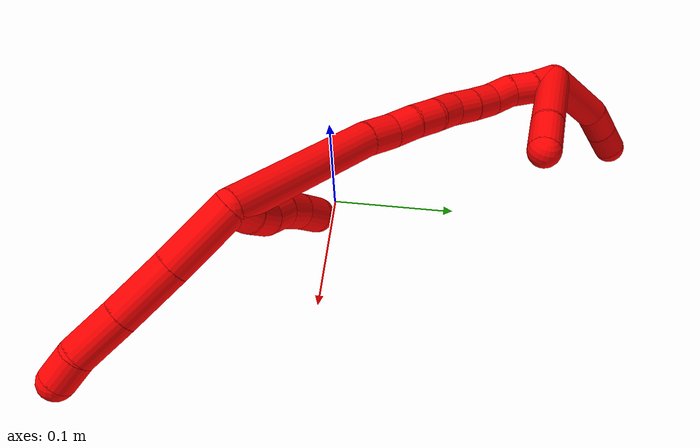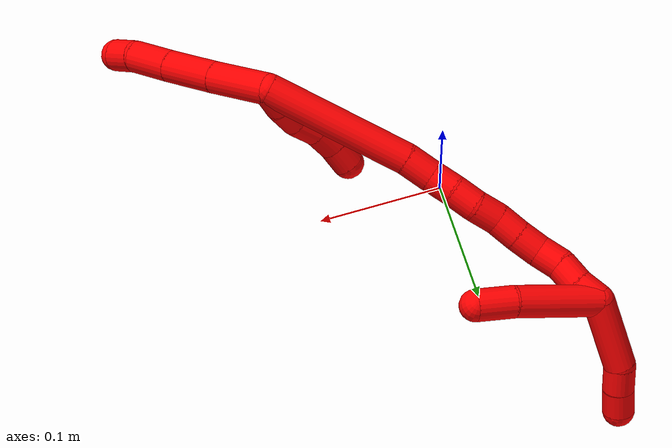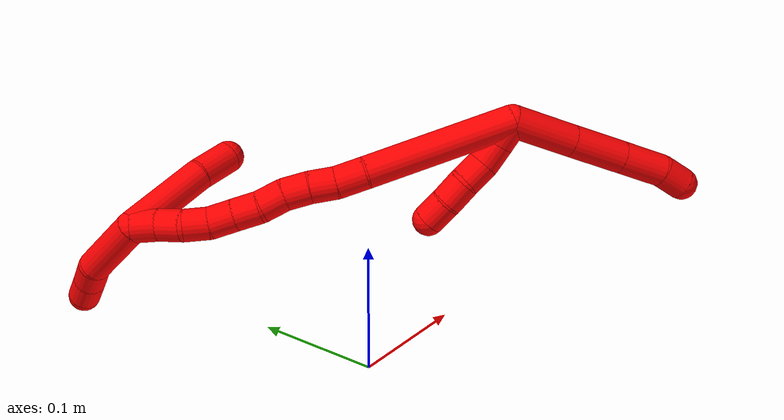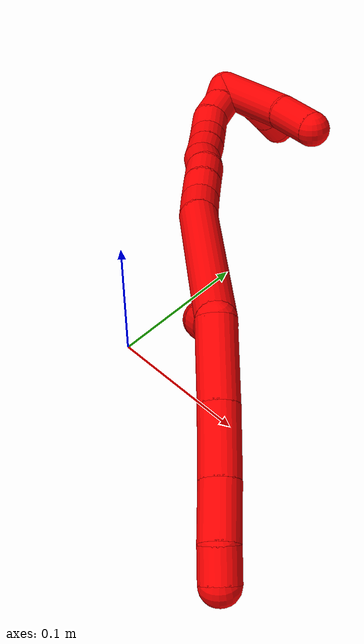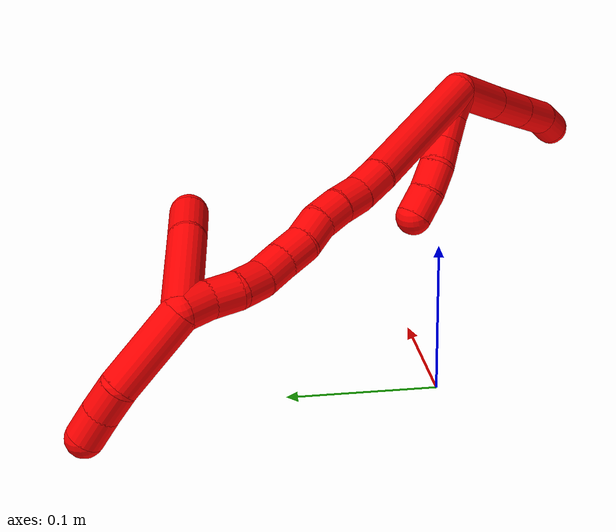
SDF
<sdf version="1.7">
 <world name="default">
  <model name="photoneo_s_sensor">
   <static>1</static>
   <pose>0 0 2 1.57079 1.57079 3.14159</pose>
   <link name="link">
    <inertial><mass>0.1</mass></inertial>
    <sensor name="sensor" type="depth">
     <update_rate>30</update_rate>
     <camera>
      <horizontal_fov>1.22</horizontal_fov>
      <image><width>1920</width><height>1200</height><format>B8G8R8</format></image>
      <clip><near>0.1</near><far>4</far></clip>
      <depth_camera><output>points</output></depth_camera>
     </camera>
     <plugin name="camera_plugin" filename="libgazebo_ros_depth_camera.so">
      <baseline>0.2</baseline>
      <alwaysOn>1</alwaysOn>
      <updateRate>0.0</updateRate>
      <cameraName>camera_ir</cameraName>
      <imageTopicName>/camera/color/image_raw</imageTopicName>
      <cameraInfoTopicName>/camera/color/camera_info</cameraInfoTopicName>
      <depthImageTopicName>/camera/depth/image_raw</depthImageTopicName>
      <depthImageCameraInfoTopicName>/camera/depth/camera_info</depthImageCameraInfoTopicName>
      <pointCloudTopicName>/camera/depth/points</pointCloudTopicName>
      <frameName>fr_optical</frameName>
      <pointCloudCutoff>0.1</pointCloudCutoff>
      <pointCloudCutoffMax>2.0</pointCloudCutoffMax>
      <distortionK1>0</distortionK1>
      <distortionK2>0</distortionK2>
      <distortionK3>0</distortionK3>
      <distortionT1>0</distortionT1>
      <distortionT2>0</distortionT2>
      <CxPrime>0</CxPrime>
      <Cx>0</Cx>
      <Cy>0</Cy>
      <focalLength>0</focalLength>
      <hackBaseline>0</hackBaseline>
     </plugin>
    </sensor>
   </link>
  </model>
  <model name="bin">
   <static>1</static>
   <link name="bottom">
    <collision name="collision-bottom">
     <pose>0 0 -0.01 0 -0 0</pose>
     <geometry><box><size>0.8 0.6 0.02</size></box></geometry>
     <surface>
      <friction><ode><mu>100</mu><mu2>100</mu2></ode></friction>
      <contact><collide_bitmask>65535</collide_bitmask></contact>
     </surface>
    </collision>
   </link>
   <link name="west_wall">
    <collision name="collision-west_wall">
     <pose>-0.41 0 0.1 0 -0 0</pose>
     <geometry><box><size>0.02 0.6 0.2</size></box></geometry>
     <surface>
      <friction><ode><mu>100</mu><mu2>100</mu2></ode></friction>
      <contact><collide_bitmask>65535</collide_bitmask></contact>
     </surface>
    </collision>
   </link>
   <link name="east_wall">
    <collision name="collision-east_wall">
     <pose>0.41 0 0.1 0 -0 0</pose>
     <geometry><box><size>0.02 0.6 0.2</size></box></geometry>
     <surface>
      <friction><ode><mu>100</mu><mu2>100</mu2></ode></friction>
      <contact><collide_bitmask>65535</collide_bitmask></contact>
     </surface>
    </collision>
   </link>
   <link name="south_wall">
    <collision name="collision-south_wall">
     <pose>0 -0.31 0.1 0 -0 0</pose>
     <geometry><box><size>0.8 0.02 0.2</size></box></geometry>
     <surface>
      <friction><ode><mu>100</mu><mu2>100</mu2></ode></friction>
      <contact><collide_bitmask>65535</collide_bitmask></contact>
     </surface>
    </collision>
   </link>
   <link name="north_wall">
    <collision name="collision-north_wall">
     <pose>0 0.31 0.1 0 -0 0</pose>
     <geometry><box><size>0.8 0.02 0.2</size></box></geometry>
     <surface>
      <friction><ode><mu>100</mu><mu2>100</mu2></ode></friction>
      <contact><collide_bitmask>65535</collide_bitmask></contact>
     </surface>
    </collision>
   </link>
  </model>
  <model name="2">
   <static>0</static>
   <link name="2">
    <collision name="collision-cylinder-e_1_2_8">
     <pose>0.012055 -0.015469 -0.016014 2.37349 0.496239 1.11992</pose>
     <geometry><cylinder><radius>0.0125</radius><length>0.050638</length></cylinder></geometry>
     <surface>
      <friction><ode><mu>1.16</mu><mu2>1.16</mu2><slip1>0</slip1><slip2>0</slip2></ode></friction>
      <contact><ode><kp>1e+06</kp><kd>1</kd><max_vel>0</max_vel><min_depth>0.001</min_depth></ode></contact>
     </surface>
    </collision>
    <visual name="visual-cylinder-e_1_2_8">
     <pose>0.012055 -0.015469 -0.016014 2.37349 0.496239 1.11992</pose>
     <geometry><cylinder><radius>0.0125</radius><length>0.050638</length></cylinder></geometry>
     <material><ambient>1 0 0 1</ambient></material>
    </visual>
    <collision name="collision-cylinder-e_2_8_9">
     <pose>0.034131 -0.044457 -0.04539 2.35039 0.485175 1.06985</pose>
     <geometry><cylinder><radius>0.0125</radius><length>0.042976</length></cylinder></geometry>
     <surface>
      <friction><ode><mu>1.16</mu><mu2>1.16</mu2><slip1>0</slip1><slip2>0</slip2></ode></friction>
      <contact><ode><kp>1e+06</kp><kd>1</kd><max_vel>0</max_vel><min_depth>0.001</min_depth></ode></contact>
     </surface>
    </collision>
    <visual name="visual-cylinder-e_2_8_9">
     <pose>0.034131 -0.044457 -0.04539 2.35039 0.485175 1.06985</pose>
     <geometry><cylinder><radius>0.0125</radius><length>0.042976</length></cylinder></geometry>
     <material><ambient>1 0 0 1</ambient></material>
    </visual>
    <collision name="collision-cylinder-e_3_9_10">
     <pose>0.052036 -0.069281 -0.069549 2.33316 0.467073 1.015</pose>
     <geometry><cylinder><radius>0.0125</radius><length>0.035016</length></cylinder></geometry>
     <surface>
      <friction><ode><mu>1.16</mu><mu2>1.16</mu2><slip1>0</slip1><slip2>0</slip2></ode></friction>
      <contact><ode><kp>1e+06</kp><kd>1</kd><max_vel>0</max_vel><min_depth>0.001</min_depth></ode></contact>
     </surface>
    </collision>
    <visual name="visual-cylinder-e_3_9_10">
     <pose>0.052036 -0.069281 -0.069549 2.33316 0.467073 1.015</pose>
     <geometry><cylinder><radius>0.0125</radius><length>0.035016</length></cylinder></geometry>
     <material><ambient>1 0 0 1</ambient></material>
    </visual>
    <collision name="collision-cylinder-e_4_10_6">
     <pose>0.063794 -0.085936 -0.088745 2.57454 0.37105 1.14447</pose>
     <geometry><cylinder><radius>0.0125</radius><length>0.02137</length></cylinder></geometry>
     <surface>
      <friction><ode><mu>1.16</mu><mu2>1.16</mu2><slip1>0</slip1><slip2>0</slip2></ode></friction>
      <contact><ode><kp>1e+06</kp><kd>1</kd><max_vel>0</max_vel><min_depth>0.001</min_depth></ode></contact>
     </surface>
    </collision>
    <visual name="visual-cylinder-e_4_10_6">
     <pose>0.063794 -0.085936 -0.088745 2.57454 0.37105 1.14447</pose>
     <geometry><cylinder><radius>0.0125</radius><length>0.02137</length></cylinder></geometry>
     <material><ambient>1 0 0 1</ambient></material>
    </visual>
    <collision name="collision-cylinder-e_1_2_11">
     <pose>-0.004601 0.005785 -0.006735 -2.4319 -0.478069 1.16353</pose>
     <geometry><cylinder><radius>0.0125</radius><length>0.02</length></cylinder></geometry>
     <surface>
      <friction><ode><mu>1.16</mu><mu2>1.16</mu2><slip1>0</slip1><slip2>0</slip2></ode></friction>
      <contact><ode><kp>1e+06</kp><kd>1</kd><max_vel>0</max_vel><min_depth>0.001</min_depth></ode></contact>
     </surface>
    </collision>
    <visual name="visual-cylinder-e_1_2_11">
     <pose>-0.004601 0.005785 -0.006735 -2.4319 -0.478069 1.16353</pose>
     <geometry><cylinder><radius>0.0125</radius><length>0.02</length></cylinder></geometry>
     <material><ambient>1 0 0 1</ambient></material>
    </visual>
    <collision name="collision-cylinder-e_2_11_12">
     <pose>-0.015155 0.016925 -0.019461 -2.41223 -0.637692 1.42595</pose>
     <geometry><cylinder><radius>0.0125</radius><length>0.02</length></cylinder></geometry>
     <surface>
      <friction><ode><mu>1.16</mu><mu2>1.16</mu2><slip1>0</slip1><slip2>0</slip2></ode></friction>
      <contact><ode><kp>1e+06</kp><kd>1</kd><max_vel>0</max_vel><min_depth>0.001</min_depth></ode></contact>
     </surface>
    </collision>
    <visual name="visual-cylinder-e_2_11_12">
     <pose>-0.015155 0.016925 -0.019461 -2.41223 -0.637692 1.42595</pose>
     <geometry><cylinder><radius>0.0125</radius><length>0.02</length></cylinder></geometry>
     <material><ambient>1 0 0 1</ambient></material>
    </visual>
    <collision name="collision-cylinder-e_3_12_13">
     <pose>-0.028925 0.027484 -0.028889 -2.15437 -0.897295 1.45978</pose>
     <geometry><cylinder><radius>0.0125</radius><length>0.02</length></cylinder></geometry>
     <surface>
      <friction><ode><mu>1.16</mu><mu2>1.16</mu2><slip1>0</slip1><slip2>0</slip2></ode></friction>
      <contact><ode><kp>1e+06</kp><kd>1</kd><max_vel>0</max_vel><min_depth>0.001</min_depth></ode></contact>
     </surface>
    </collision>
    <visual name="visual-cylinder-e_3_12_13">
     <pose>-0.028925 0.027484 -0.028889 -2.15437 -0.897295 1.45978</pose>
     <geometry><cylinder><radius>0.0125</radius><length>0.02</length></cylinder></geometry>
     <material><ambient>1 0 0 1</ambient></material>
    </visual>
    <collision name="collision-cylinder-e_4_13_14">
     <pose>-0.042752 0.038871 -0.03739 -2.25712 -0.644911 1.22897</pose>
     <geometry><cylinder><radius>0.0125</radius><length>0.02</length></cylinder></geometry>
     <surface>
      <friction><ode><mu>1.16</mu><mu2>1.16</mu2><slip1>0</slip1><slip2>0</slip2></ode></friction>
      <contact><ode><kp>1e+06</kp><kd>1</kd><max_vel>0</max_vel><min_depth>0.001</min_depth></ode></contact>
     </surface>
    </collision>
    <visual name="visual-cylinder-e_4_13_14">
     <pose>-0.042752 0.038871 -0.03739 -2.25712 -0.644911 1.22897</pose>
     <geometry><cylinder><radius>0.0125</radius><length>0.02</length></cylinder></geometry>
     <material><ambient>1 0 0 1</ambient></material>
    </visual>
    <collision name="collision-cylinder-e_5_14_5">
     <pose>-0.053499 0.052129 -0.047699 -2.20873 -0.493332 0.927459</pose>
     <geometry><cylinder><radius>0.0125</radius><length>0.02</length></cylinder></geometry>
     <surface>
      <friction><ode><mu>1.16</mu><mu2>1.16</mu2><slip1>0</slip1><slip2>0</slip2></ode></friction>
      <contact><ode><kp>1e+06</kp><kd>1</kd><max_vel>0</max_vel><min_depth>0.001</min_depth></ode></contact>
     </surface>
    </collision>
    <visual name="visual-cylinder-e_5_14_5">
     <pose>-0.053499 0.052129 -0.047699 -2.20873 -0.493332 0.927459</pose>
     <geometry><cylinder><radius>0.0125</radius><length>0.02</length></cylinder></geometry>
     <material><ambient>1 0 0 1</ambient></material>
    </visual>
    <collision name="collision-cylinder-e_1_2_15">
     <pose>-0.040097 0.042379 0.001512 -1.53513 -0.757425 0.733236</pose>
     <geometry><cylinder><radius>0.0125</radius><length>0.116723</length></cylinder></geometry>
     <surface>
      <friction><ode><mu>1.16</mu><mu2>1.16</mu2><slip1>0</slip1><slip2>0</slip2></ode></friction>
      <contact><ode><kp>1e+06</kp><kd>1</kd><max_vel>0</max_vel><min_depth>0.001</min_depth></ode></contact>
     </surface>
    </collision>
    <visual name="visual-cylinder-e_1_2_15">
     <pose>-0.040097 0.042379 0.001512 -1.53513 -0.757425 0.733236</pose>
     <geometry><cylinder><radius>0.0125</radius><length>0.116723</length></cylinder></geometry>
     <material><ambient>1 0 0 1</ambient></material>
    </visual>
    <collision name="collision-cylinder-e_2_15_16">
     <pose>-0.087037 0.094056 0.002657 -1.61027 -0.633996 0.657761</pose>
     <geometry><cylinder><radius>0.0125</radius><length>0.023101</length></cylinder></geometry>
     <surface>
      <friction><ode><mu>1.16</mu><mu2>1.16</mu2><slip1>0</slip1><slip2>0</slip2></ode></friction>
      <contact><ode><kp>1e+06</kp><kd>1</kd><max_vel>0</max_vel><min_depth>0.001</min_depth></ode></contact>
     </surface>
    </collision>
    <visual name="visual-cylinder-e_2_15_16">
     <pose>-0.087037 0.094056 0.002657 -1.61027 -0.633996 0.657761</pose>
     <geometry><cylinder><radius>0.0125</radius><length>0.023101</length></cylinder></geometry>
     <material><ambient>1 0 0 1</ambient></material>
    </visual>
    <collision name="collision-cylinder-e_3_16_17">
     <pose>-0.09941 0.111632 0.003548 -1.41985 -0.58384 0.505465</pose>
     <geometry><cylinder><radius>0.0125</radius><length>0.020069</length></cylinder></geometry>
     <surface>
      <friction><ode><mu>1.16</mu><mu2>1.16</mu2><slip1>0</slip1><slip2>0</slip2></ode></friction>
      <contact><ode><kp>1e+06</kp><kd>1</kd><max_vel>0</max_vel><min_depth>0.001</min_depth></ode></contact>
     </surface>
    </collision>
    <visual name="visual-cylinder-e_3_16_17">
     <pose>-0.09941 0.111632 0.003548 -1.41985 -0.58384 0.505465</pose>
     <geometry><cylinder><radius>0.0125</radius><length>0.020069</length></cylinder></geometry>
     <material><ambient>1 0 0 1</ambient></material>
    </visual>
    <collision name="collision-cylinder-e_4_17_18">
     <pose>-0.110557 0.128218 0.004963 -1.55201 -0.594246 0.583806</pose>
     <geometry><cylinder><radius>0.0125</radius><length>0.020058</length></cylinder></geometry>
     <surface>
      <friction><ode><mu>1.16</mu><mu2>1.16</mu2><slip1>0</slip1><slip2>0</slip2></ode></friction>
      <contact><ode><kp>1e+06</kp><kd>1</kd><max_vel>0</max_vel><min_depth>0.001</min_depth></ode></contact>
     </surface>
    </collision>
    <visual name="visual-cylinder-e_4_17_18">
     <pose>-0.110557 0.128218 0.004963 -1.55201 -0.594246 0.583806</pose>
     <geometry><cylinder><radius>0.0125</radius><length>0.020058</length></cylinder></geometry>
     <material><ambient>1 0 0 1</ambient></material>
    </visual>
    <collision name="collision-cylinder-e_5_18_19">
     <pose>-0.123062 0.143692 0.003838 -1.74777 -0.757933 0.888122</pose>
     <geometry><cylinder><radius>0.0125</radius><length>0.020046</length></cylinder></geometry>
     <surface>
      <friction><ode><mu>1.16</mu><mu2>1.16</mu2><slip1>0</slip1><slip2>0</slip2></ode></friction>
      <contact><ode><kp>1e+06</kp><kd>1</kd><max_vel>0</max_vel><min_depth>0.001</min_depth></ode></contact>
     </surface>
    </collision>
    <visual name="visual-cylinder-e_5_18_19">
     <pose>-0.123062 0.143692 0.003838 -1.74777 -0.757933 0.888122</pose>
     <geometry><cylinder><radius>0.0125</radius><length>0.020046</length></cylinder></geometry>
     <material><ambient>1 0 0 1</ambient></material>
    </visual>
    <collision name="collision-cylinder-e_6_19_20">
     <pose>-0.135166 0.159382 0.002141 -1.61944 -0.548386 0.574286</pose>
     <geometry><cylinder><radius>0.0125</radius><length>0.020002</length></cylinder></geometry>
     <surface>
      <friction><ode><mu>1.16</mu><mu2>1.16</mu2><slip1>0</slip1><slip2>0</slip2></ode></friction>
      <contact><ode><kp>1e+06</kp><kd>1</kd><max_vel>0</max_vel><min_depth>0.001</min_depth></ode></contact>
     </surface>
    </collision>
    <visual name="visual-cylinder-e_6_19_20">
     <pose>-0.135166 0.159382 0.002141 -1.61944 -0.548386 0.574286</pose>
     <geometry><cylinder><radius>0.0125</radius><length>0.020002</length></cylinder></geometry>
     <material><ambient>1 0 0 1</ambient></material>
    </visual>
    <collision name="collision-cylinder-e_7_20_21">
     <pose>-0.146038 0.176146 0.001433 -1.60638 -0.601465 0.621901</pose>
     <geometry><cylinder><radius>0.0125</radius><length>0.020001</length></cylinder></geometry>
     <surface>
      <friction><ode><mu>1.16</mu><mu2>1.16</mu2><slip1>0</slip1><slip2>0</slip2></ode></friction>
      <contact><ode><kp>1e+06</kp><kd>1</kd><max_vel>0</max_vel><min_depth>0.001</min_depth></ode></contact>
     </surface>
    </collision>
    <visual name="visual-cylinder-e_7_20_21">
     <pose>-0.146038 0.176146 0.001433 -1.60638 -0.601465 0.621901</pose>
     <geometry><cylinder><radius>0.0125</radius><length>0.020001</length></cylinder></geometry>
     <material><ambient>1 0 0 1</ambient></material>
    </visual>
    <collision name="collision-cylinder-e_8_21_22">
     <pose>-0.156909 0.192678 0.003162 -1.33157 -0.548265 0.434756</pose>
     <geometry><cylinder><radius>0.0125</radius><length>0.02</length></cylinder></geometry>
     <surface>
      <friction><ode><mu>1.16</mu><mu2>1.16</mu2><slip1>0</slip1><slip2>0</slip2></ode></friction>
      <contact><ode><kp>1e+06</kp><kd>1</kd><max_vel>0</max_vel><min_depth>0.001</min_depth></ode></contact>
     </surface>
    </collision>
    <visual name="visual-cylinder-e_8_21_22">
     <pose>-0.156909 0.192678 0.003162 -1.33157 -0.548265 0.434756</pose>
     <geometry><cylinder><radius>0.0125</radius><length>0.02</length></cylinder></geometry>
     <material><ambient>1 0 0 1</ambient></material>
    </visual>
    <collision name="collision-cylinder-e_9_22_23">
     <pose>-0.164642 0.210518 0.006751 -1.40817 -0.254853 0.216772</pose>
     <geometry><cylinder><radius>0.0125</radius><length>0.02</length></cylinder></geometry>
     <surface>
      <friction><ode><mu>1.16</mu><mu2>1.16</mu2><slip1>0</slip1><slip2>0</slip2></ode></friction>
      <contact><ode><kp>1e+06</kp><kd>1</kd><max_vel>0</max_vel><min_depth>0.001</min_depth></ode></contact>
     </surface>
    </collision>
    <visual name="visual-cylinder-e_9_22_23">
     <pose>-0.164642 0.210518 0.006751 -1.40817 -0.254853 0.216772</pose>
     <geometry><cylinder><radius>0.0125</radius><length>0.02</length></cylinder></geometry>
     <material><ambient>1 0 0 1</ambient></material>
    </visual>
    <collision name="collision-cylinder-e_10_23_1">
     <pose>-0.171586 0.228868 0.010046 -1.37692 -0.458169 0.379089</pose>
     <geometry><cylinder><radius>0.0125</radius><length>0.02</length></cylinder></geometry>
     <surface>
      <friction><ode><mu>1.16</mu><mu2>1.16</mu2><slip1>0</slip1><slip2>0</slip2></ode></friction>
      <contact><ode><kp>1e+06</kp><kd>1</kd><max_vel>0</max_vel><min_depth>0.001</min_depth></ode></contact>
     </surface>
    </collision>
    <visual name="visual-cylinder-e_10_23_1">
     <pose>-0.171586 0.228868 0.010046 -1.37692 -0.458169 0.379089</pose>
     <geometry><cylinder><radius>0.0125</radius><length>0.02</length></cylinder></geometry>
     <material><ambient>1 0 0 1</ambient></material>
    </visual>
    <collision name="collision-cylinder-e_1_1_24">
     <pose>-0.14277 0.228023 0.013886 1.35518 1.28204 1.08143</pose>
     <geometry><cylinder><radius>0.0125</radius><length>0.06935</length></cylinder></geometry>
     <surface>
      <friction><ode><mu>1.16</mu><mu2>1.16</mu2><slip1>0</slip1><slip2>0</slip2></ode></friction>
      <contact><ode><kp>1e+06</kp><kd>1</kd><max_vel>0</max_vel><min_depth>0.001</min_depth></ode></contact>
     </surface>
    </collision>
    <visual name="visual-cylinder-e_1_1_24">
     <pose>-0.14277 0.228023 0.013886 1.35518 1.28204 1.08143</pose>
     <geometry><cylinder><radius>0.0125</radius><length>0.06935</length></cylinder></geometry>
     <material><ambient>1 0 0 1</ambient></material>
    </visual>
    <collision name="collision-cylinder-e_2_24_4">
     <pose>-0.094689 0.214745 0.014818 1.88502 1.31885 1.63563</pose>
     <geometry><cylinder><radius>0.0125</radius><length>0.03065</length></cylinder></geometry>
     <surface>
      <friction><ode><mu>1.16</mu><mu2>1.16</mu2><slip1>0</slip1><slip2>0</slip2></ode></friction>
      <contact><ode><kp>1e+06</kp><kd>1</kd><max_vel>0</max_vel><min_depth>0.001</min_depth></ode></contact>
     </surface>
    </collision>
    <visual name="visual-cylinder-e_2_24_4">
     <pose>-0.094689 0.214745 0.014818 1.88502 1.31885 1.63563</pose>
     <geometry><cylinder><radius>0.0125</radius><length>0.03065</length></cylinder></geometry>
     <material><ambient>1 0 0 1</ambient></material>
    </visual>
    <collision name="collision-cylinder-e_1_1_25">
     <pose>-0.181121 0.261054 -0.004621 -2.18224 -0.177117 0.338113</pose>
     <geometry><cylinder><radius>0.0125</radius><length>0.058027</length></cylinder></geometry>
     <surface>
      <friction><ode><mu>1.16</mu><mu2>1.16</mu2><slip1>0</slip1><slip2>0</slip2></ode></friction>
      <contact><ode><kp>1e+06</kp><kd>1</kd><max_vel>0</max_vel><min_depth>0.001</min_depth></ode></contact>
     </surface>
    </collision>
    <visual name="visual-cylinder-e_1_1_25">
     <pose>-0.181121 0.261054 -0.004621 -2.18224 -0.177117 0.338113</pose>
     <geometry><cylinder><radius>0.0125</radius><length>0.058027</length></cylinder></geometry>
     <material><ambient>1 0 0 1</ambient></material>
    </visual>
    <collision name="collision-cylinder-e_2_25_26">
     <pose>-0.185546 0.291478 -0.028928 -2.41458 0.064814 -0.170027</pose>
     <geometry><cylinder><radius>0.0125</radius><length>0.021223</length></cylinder></geometry>
     <surface>
      <friction><ode><mu>1.16</mu><mu2>1.16</mu2><slip1>0</slip1><slip2>0</slip2></ode></friction>
      <contact><ode><kp>1e+06</kp><kd>1</kd><max_vel>0</max_vel><min_depth>0.001</min_depth></ode></contact>
     </surface>
    </collision>
    <visual name="visual-cylinder-e_2_25_26">
     <pose>-0.185546 0.291478 -0.028928 -2.41458 0.064814 -0.170027</pose>
     <geometry><cylinder><radius>0.0125</radius><length>0.021223</length></cylinder></geometry>
     <material><ambient>1 0 0 1</ambient></material>
    </visual>
    <collision name="collision-cylinder-e_3_26_3">
     <pose>-0.184848 0.305379 -0.04462 -2.41875 0.000984 -0.002603</pose>
     <geometry><cylinder><radius>0.0125</radius><length>0.02075</length></cylinder></geometry>
     <surface>
      <friction><ode><mu>1.16</mu><mu2>1.16</mu2><slip1>0</slip1><slip2>0</slip2></ode></friction>
      <contact><ode><kp>1e+06</kp><kd>1</kd><max_vel>0</max_vel><min_depth>0.001</min_depth></ode></contact>
     </surface>
    </collision>
    <visual name="visual-cylinder-e_3_26_3">
     <pose>-0.184848 0.305379 -0.04462 -2.41875 0.000984 -0.002603</pose>
     <geometry><cylinder><radius>0.0125</radius><length>0.02075</length></cylinder></geometry>
     <material><ambient>1 0 0 1</ambient></material>
    </visual>
    <collision name="collision-sphere-3">
     <pose>-0.184838 0.312242 -0.0524 0 -0 0</pose>
     <geometry><sphere><radius>0.0125</radius></sphere></geometry>
     <surface>
      <friction><ode><mu>1.16</mu><mu2>1.16</mu2><slip1>0</slip1><slip2>0</slip2></ode></friction>
      <contact><ode><kp>1e+06</kp><kd>1</kd><max_vel>0</max_vel><min_depth>0.001</min_depth></ode></contact>
     </surface>
    </collision>
    <visual name="visual-sphere-3">
     <pose>-0.184838 0.312242 -0.0524 0 -0 0</pose>
     <geometry><sphere><radius>0.0125</radius></sphere></geometry>
     <material><ambient>1 0 0 1</ambient></material>
    </visual>
    <collision name="collision-sphere-26">
     <pose>-0.184859 0.298516 -0.036839 0 -0 0</pose>
     <geometry><sphere><radius>0.0125</radius></sphere></geometry>
     <surface>
      <friction><ode><mu>1.16</mu><mu2>1.16</mu2><slip1>0</slip1><slip2>0</slip2></ode></friction>
      <contact><ode><kp>1e+06</kp><kd>1</kd><max_vel>0</max_vel><min_depth>0.001</min_depth></ode></contact>
     </surface>
    </collision>
    <visual name="visual-sphere-26">
     <pose>-0.184859 0.298516 -0.036839 0 -0 0</pose>
     <geometry><sphere><radius>0.0125</radius></sphere></geometry>
     <material><ambient>1 0 0 1</ambient></material>
    </visual>
    <collision name="collision-sphere-25">
     <pose>-0.186233 0.28444 -0.021016 0 -0 0</pose>
     <geometry><sphere><radius>0.0125</radius></sphere></geometry>
     <surface>
      <friction><ode><mu>1.16</mu><mu2>1.16</mu2><slip1>0</slip1><slip2>0</slip2></ode></friction>
      <contact><ode><kp>1e+06</kp><kd>1</kd><max_vel>0</max_vel><min_depth>0.001</min_depth></ode></contact>
     </surface>
    </collision>
    <visual name="visual-sphere-25">
     <pose>-0.186233 0.28444 -0.021016 0 -0 0</pose>
     <geometry><sphere><radius>0.0125</radius></sphere></geometry>
     <material><ambient>1 0 0 1</ambient></material>
    </visual>
    <collision name="collision-sphere-4">
     <pose>-0.079848 0.211112 0.013637 0 -0 0</pose>
     <geometry><sphere><radius>0.0125</radius></sphere></geometry>
     <surface>
      <friction><ode><mu>1.16</mu><mu2>1.16</mu2><slip1>0</slip1><slip2>0</slip2></ode></friction>
      <contact><ode><kp>1e+06</kp><kd>1</kd><max_vel>0</max_vel><min_depth>0.001</min_depth></ode></contact>
     </surface>
    </collision>
    <visual name="visual-sphere-4">
     <pose>-0.079848 0.211112 0.013637 0 -0 0</pose>
     <geometry><sphere><radius>0.0125</radius></sphere></geometry>
     <material><ambient>1 0 0 1</ambient></material>
    </visual>
    <collision name="collision-sphere-24">
     <pose>-0.10953 0.218378 0.015999 0 -0 0</pose>
     <geometry><sphere><radius>0.0125</radius></sphere></geometry>
     <surface>
      <friction><ode><mu>1.16</mu><mu2>1.16</mu2><slip1>0</slip1><slip2>0</slip2></ode></friction>
      <contact><ode><kp>1e+06</kp><kd>1</kd><max_vel>0</max_vel><min_depth>0.001</min_depth></ode></contact>
     </surface>
    </collision>
    <visual name="visual-sphere-24">
     <pose>-0.10953 0.218378 0.015999 0 -0 0</pose>
     <geometry><sphere><radius>0.0125</radius></sphere></geometry>
     <material><ambient>1 0 0 1</ambient></material>
    </visual>
    <collision name="collision-sphere-1">
     <pose>-0.176009 0.237669 0.011774 0 -0 0</pose>
     <geometry><sphere><radius>0.0125</radius></sphere></geometry>
     <surface>
      <friction><ode><mu>1.16</mu><mu2>1.16</mu2><slip1>0</slip1><slip2>0</slip2></ode></friction>
      <contact><ode><kp>1e+06</kp><kd>1</kd><max_vel>0</max_vel><min_depth>0.001</min_depth></ode></contact>
     </surface>
    </collision>
    <visual name="visual-sphere-1">
     <pose>-0.176009 0.237669 0.011774 0 -0 0</pose>
     <geometry><sphere><radius>0.0125</radius></sphere></geometry>
     <material><ambient>1 0 0 1</ambient></material>
    </visual>
    <collision name="collision-sphere-23">
     <pose>-0.167163 0.220068 0.008318 0 -0 0</pose>
     <geometry><sphere><radius>0.0125</radius></sphere></geometry>
     <surface>
      <friction><ode><mu>1.16</mu><mu2>1.16</mu2><slip1>0</slip1><slip2>0</slip2></ode></friction>
      <contact><ode><kp>1e+06</kp><kd>1</kd><max_vel>0</max_vel><min_depth>0.001</min_depth></ode></contact>
     </surface>
    </collision>
    <visual name="visual-sphere-23">
     <pose>-0.167163 0.220068 0.008318 0 -0 0</pose>
     <geometry><sphere><radius>0.0125</radius></sphere></geometry>
     <material><ambient>1 0 0 1</ambient></material>
    </visual>
    <collision name="collision-sphere-22">
     <pose>-0.162121 0.200969 0.005184 0 -0 0</pose>
     <geometry><sphere><radius>0.0125</radius></sphere></geometry>
     <surface>
      <friction><ode><mu>1.16</mu><mu2>1.16</mu2><slip1>0</slip1><slip2>0</slip2></ode></friction>
      <contact><ode><kp>1e+06</kp><kd>1</kd><max_vel>0</max_vel><min_depth>0.001</min_depth></ode></contact>
     </surface>
    </collision>
    <visual name="visual-sphere-22">
     <pose>-0.162121 0.200969 0.005184 0 -0 0</pose>
     <geometry><sphere><radius>0.0125</radius></sphere></geometry>
     <material><ambient>1 0 0 1</ambient></material>
    </visual>
    <collision name="collision-sphere-21">
     <pose>-0.151697 0.184386 0.00114 0 -0 0</pose>
     <geometry><sphere><radius>0.0125</radius></sphere></geometry>
     <surface>
      <friction><ode><mu>1.16</mu><mu2>1.16</mu2><slip1>0</slip1><slip2>0</slip2></ode></friction>
      <contact><ode><kp>1e+06</kp><kd>1</kd><max_vel>0</max_vel><min_depth>0.001</min_depth></ode></contact>
     </surface>
    </collision>
    <visual name="visual-sphere-21">
     <pose>-0.151697 0.184386 0.00114 0 -0 0</pose>
     <geometry><sphere><radius>0.0125</radius></sphere></geometry>
     <material><ambient>1 0 0 1</ambient></material>
    </visual>
    <collision name="collision-sphere-11">
     <pose>-0.009201 0.011571 -0.01347 0 -0 0</pose>
     <geometry><sphere><radius>0.0125</radius></sphere></geometry>
     <surface>
      <friction><ode><mu>1.16</mu><mu2>1.16</mu2><slip1>0</slip1><slip2>0</slip2></ode></friction>
      <contact><ode><kp>1e+06</kp><kd>1</kd><max_vel>0</max_vel><min_depth>0.001</min_depth></ode></contact>
     </surface>
    </collision>
    <visual name="visual-sphere-11">
     <pose>-0.009201 0.011571 -0.01347 0 -0 0</pose>
     <geometry><sphere><radius>0.0125</radius></sphere></geometry>
     <material><ambient>1 0 0 1</ambient></material>
    </visual>
    <collision name="collision-sphere-6">
     <pose>0.067668 -0.091285 -0.097144 0 -0 0</pose>
     <geometry><sphere><radius>0.0125</radius></sphere></geometry>
     <surface>
      <friction><ode><mu>1.16</mu><mu2>1.16</mu2><slip1>0</slip1><slip2>0</slip2></ode></friction>
      <contact><ode><kp>1e+06</kp><kd>1</kd><max_vel>0</max_vel><min_depth>0.001</min_depth></ode></contact>
     </surface>
    </collision>
    <visual name="visual-sphere-6">
     <pose>0.067668 -0.091285 -0.097144 0 -0 0</pose>
     <geometry><sphere><radius>0.0125</radius></sphere></geometry>
     <material><ambient>1 0 0 1</ambient></material>
    </visual>
    <collision name="collision-sphere-10">
     <pose>0.059919 -0.080587 -0.080345 0 -0 0</pose>
     <geometry><sphere><radius>0.0125</radius></sphere></geometry>
     <surface>
      <friction><ode><mu>1.16</mu><mu2>1.16</mu2><slip1>0</slip1><slip2>0</slip2></ode></friction>
      <contact><ode><kp>1e+06</kp><kd>1</kd><max_vel>0</max_vel><min_depth>0.001</min_depth></ode></contact>
     </surface>
    </collision>
    <visual name="visual-sphere-10">
     <pose>0.059919 -0.080587 -0.080345 0 -0 0</pose>
     <geometry><sphere><radius>0.0125</radius></sphere></geometry>
     <material><ambient>1 0 0 1</ambient></material>
    </visual>
    <collision name="collision-sphere-9">
     <pose>0.044152 -0.057976 -0.058752 0 -0 0</pose>
     <geometry><sphere><radius>0.0125</radius></sphere></geometry>
     <surface>
      <friction><ode><mu>1.16</mu><mu2>1.16</mu2><slip1>0</slip1><slip2>0</slip2></ode></friction>
      <contact><ode><kp>1e+06</kp><kd>1</kd><max_vel>0</max_vel><min_depth>0.001</min_depth></ode></contact>
     </surface>
    </collision>
    <visual name="visual-sphere-9">
     <pose>0.044152 -0.057976 -0.058752 0 -0 0</pose>
     <geometry><sphere><radius>0.0125</radius></sphere></geometry>
     <material><ambient>1 0 0 1</ambient></material>
    </visual>
    <collision name="collision-sphere-2">
     <geometry><sphere><radius>0.0125</radius></sphere></geometry>
     <surface>
      <friction><ode><mu>1.16</mu><mu2>1.16</mu2><slip1>0</slip1><slip2>0</slip2></ode></friction>
      <contact><ode><kp>1e+06</kp><kd>1</kd><max_vel>0</max_vel><min_depth>0.001</min_depth></ode></contact>
     </surface>
    </collision>
    <visual name="visual-sphere-2">
     <geometry><sphere><radius>0.0125</radius></sphere></geometry>
     <material><ambient>1 0 0 1</ambient></material>
    </visual>
    <collision name="collision-sphere-19">
     <pose>-0.129952 0.150857 0.002556 0 -0 0</pose>
     <geometry><sphere><radius>0.0125</radius></sphere></geometry>
     <surface>
      <friction><ode><mu>1.16</mu><mu2>1.16</mu2><slip1>0</slip1><slip2>0</slip2></ode></friction>
      <contact><ode><kp>1e+06</kp><kd>1</kd><max_vel>0</max_vel><min_depth>0.001</min_depth></ode></contact>
     </surface>
    </collision>
    <visual name="visual-sphere-19">
     <pose>-0.129952 0.150857 0.002556 0 -0 0</pose>
     <geometry><sphere><radius>0.0125</radius></sphere></geometry>
     <material><ambient>1 0 0 1</ambient></material>
    </visual>
    <collision name="collision-sphere-8">
     <pose>0.02411 -0.030938 -0.032027 0 -0 0</pose>
     <geometry><sphere><radius>0.0125</radius></sphere></geometry>
     <surface>
      <friction><ode><mu>1.16</mu><mu2>1.16</mu2><slip1>0</slip1><slip2>0</slip2></ode></friction>
      <contact><ode><kp>1e+06</kp><kd>1</kd><max_vel>0</max_vel><min_depth>0.001</min_depth></ode></contact>
     </surface>
    </collision>
    <visual name="visual-sphere-8">
     <pose>0.02411 -0.030938 -0.032027 0 -0 0</pose>
     <geometry><sphere><radius>0.0125</radius></sphere></geometry>
     <material><ambient>1 0 0 1</ambient></material>
    </visual>
    <collision name="collision-sphere-12">
     <pose>-0.021108 0.022279 -0.025452 0 -0 0</pose>
     <geometry><sphere><radius>0.0125</radius></sphere></geometry>
     <surface>
      <friction><ode><mu>1.16</mu><mu2>1.16</mu2><slip1>0</slip1><slip2>0</slip2></ode></friction>
      <contact><ode><kp>1e+06</kp><kd>1</kd><max_vel>0</max_vel><min_depth>0.001</min_depth></ode></contact>
     </surface>
    </collision>
    <visual name="visual-sphere-12">
     <pose>-0.021108 0.022279 -0.025452 0 -0 0</pose>
     <geometry><sphere><radius>0.0125</radius></sphere></geometry>
     <material><ambient>1 0 0 1</ambient></material>
    </visual>
    <collision name="collision-sphere-13">
     <pose>-0.036741 0.032689 -0.032325 0 -0 0</pose>
     <geometry><sphere><radius>0.0125</radius></sphere></geometry>
     <surface>
      <friction><ode><mu>1.16</mu><mu2>1.16</mu2><slip1>0</slip1><slip2>0</slip2></ode></friction>
      <contact><ode><kp>1e+06</kp><kd>1</kd><max_vel>0</max_vel><min_depth>0.001</min_depth></ode></contact>
     </surface>
    </collision>
    <visual name="visual-sphere-13">
     <pose>-0.036741 0.032689 -0.032325 0 -0 0</pose>
     <geometry><sphere><radius>0.0125</radius></sphere></geometry>
     <material><ambient>1 0 0 1</ambient></material>
    </visual>
    <collision name="collision-sphere-14">
     <pose>-0.048764 0.045054 -0.042454 0 -0 0</pose>
     <geometry><sphere><radius>0.0125</radius></sphere></geometry>
     <surface>
      <friction><ode><mu>1.16</mu><mu2>1.16</mu2><slip1>0</slip1><slip2>0</slip2></ode></friction>
      <contact><ode><kp>1e+06</kp><kd>1</kd><max_vel>0</max_vel><min_depth>0.001</min_depth></ode></contact>
     </surface>
    </collision>
    <visual name="visual-sphere-14">
     <pose>-0.048764 0.045054 -0.042454 0 -0 0</pose>
     <geometry><sphere><radius>0.0125</radius></sphere></geometry>
     <material><ambient>1 0 0 1</ambient></material>
    </visual>
    <collision name="collision-sphere-5">
     <pose>-0.058235 0.059204 -0.052944 0 -0 0</pose>
     <geometry><sphere><radius>0.0125</radius></sphere></geometry>
     <surface>
      <friction><ode><mu>1.16</mu><mu2>1.16</mu2><slip1>0</slip1><slip2>0</slip2></ode></friction>
      <contact><ode><kp>1e+06</kp><kd>1</kd><max_vel>0</max_vel><min_depth>0.001</min_depth></ode></contact>
     </surface>
    </collision>
    <visual name="visual-sphere-5">
     <pose>-0.058235 0.059204 -0.052944 0 -0 0</pose>
     <geometry><sphere><radius>0.0125</radius></sphere></geometry>
     <material><ambient>1 0 0 1</ambient></material>
    </visual>
    <collision name="collision-sphere-15">
     <pose>-0.080195 0.084758 0.003024 0 -0 0</pose>
     <geometry><sphere><radius>0.0125</radius></sphere></geometry>
     <surface>
      <friction><ode><mu>1.16</mu><mu2>1.16</mu2><slip1>0</slip1><slip2>0</slip2></ode></friction>
      <contact><ode><kp>1e+06</kp><kd>1</kd><max_vel>0</max_vel><min_depth>0.001</min_depth></ode></contact>
     </surface>
    </collision>
    <visual name="visual-sphere-15">
     <pose>-0.080195 0.084758 0.003024 0 -0 0</pose>
     <geometry><sphere><radius>0.0125</radius></sphere></geometry>
     <material><ambient>1 0 0 1</ambient></material>
    </visual>
    <collision name="collision-sphere-16">
     <pose>-0.093879 0.103355 0.002289 0 -0 0</pose>
     <geometry><sphere><radius>0.0125</radius></sphere></geometry>
     <surface>
      <friction><ode><mu>1.16</mu><mu2>1.16</mu2><slip1>0</slip1><slip2>0</slip2></ode></friction>
      <contact><ode><kp>1e+06</kp><kd>1</kd><max_vel>0</max_vel><min_depth>0.001</min_depth></ode></contact>
     </surface>
    </collision>
    <visual name="visual-sphere-16">
     <pose>-0.093879 0.103355 0.002289 0 -0 0</pose>
     <geometry><sphere><radius>0.0125</radius></sphere></geometry>
     <material><ambient>1 0 0 1</ambient></material>
    </visual>
    <collision name="collision-sphere-17">
     <pose>-0.104942 0.119909 0.004807 0 -0 0</pose>
     <geometry><sphere><radius>0.0125</radius></sphere></geometry>
     <surface>
      <friction><ode><mu>1.16</mu><mu2>1.16</mu2><slip1>0</slip1><slip2>0</slip2></ode></friction>
      <contact><ode><kp>1e+06</kp><kd>1</kd><max_vel>0</max_vel><min_depth>0.001</min_depth></ode></contact>
     </surface>
    </collision>
    <visual name="visual-sphere-17">
     <pose>-0.104942 0.119909 0.004807 0 -0 0</pose>
     <geometry><sphere><radius>0.0125</radius></sphere></geometry>
     <material><ambient>1 0 0 1</ambient></material>
    </visual>
    <collision name="collision-sphere-18">
     <pose>-0.116172 0.136526 0.00512 0 -0 0</pose>
     <geometry><sphere><radius>0.0125</radius></sphere></geometry>
     <surface>
      <friction><ode><mu>1.16</mu><mu2>1.16</mu2><slip1>0</slip1><slip2>0</slip2></ode></friction>
      <contact><ode><kp>1e+06</kp><kd>1</kd><max_vel>0</max_vel><min_depth>0.001</min_depth></ode></contact>
     </surface>
    </collision>
    <visual name="visual-sphere-18">
     <pose>-0.116172 0.136526 0.00512 0 -0 0</pose>
     <geometry><sphere><radius>0.0125</radius></sphere></geometry>
     <material><ambient>1 0 0 1</ambient></material>
    </visual>
    <collision name="collision-sphere-20">
     <pose>-0.140379 0.167906 0.001727 0 -0 0</pose>
     <geometry><sphere><radius>0.0125</radius></sphere></geometry>
     <surface>
      <friction><ode><mu>1.16</mu><mu2>1.16</mu2><slip1>0</slip1><slip2>0</slip2></ode></friction>
      <contact><ode><kp>1e+06</kp><kd>1</kd><max_vel>0</max_vel><min_depth>0.001</min_depth></ode></contact>
     </surface>
    </collision>
    <visual name="visual-sphere-20">
     <pose>-0.140379 0.167906 0.001727 0 -0 0</pose>
     <geometry><sphere><radius>0.0125</radius></sphere></geometry>
     <material><ambient>1 0 0 1</ambient></material>
    </visual>
    <inertial>
     <pose>-0.076774 0.106797 -0.012442 0 -0 0</pose>
     <mass>0.75</mass>
     <inertia>
      <ixx>0.000229</ixx>
      <ixy>0</ixy>
      <ixz>0</ixz>
      <iyy>0.000225</iyy>
      <iyz>0</iyz>
      <izz>-5.8e-05</izz>
     </inertia>
    </inertial>
   </link>
   <pose>0.126889 -0.039062 0.167527 -0.203012 -0.214329 0.144288</pose>
  </model>
 </world>
</sdf>
